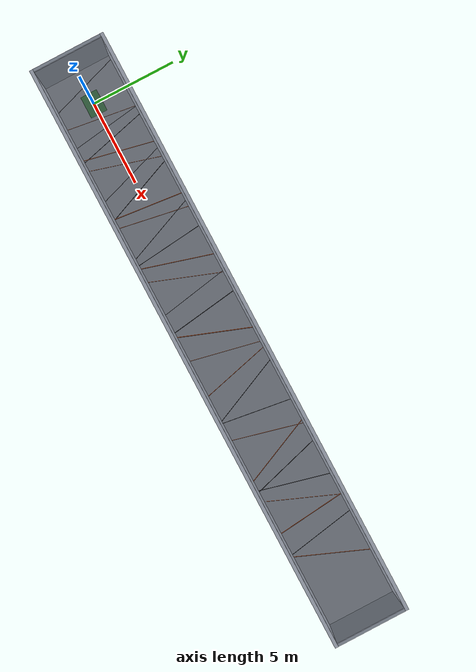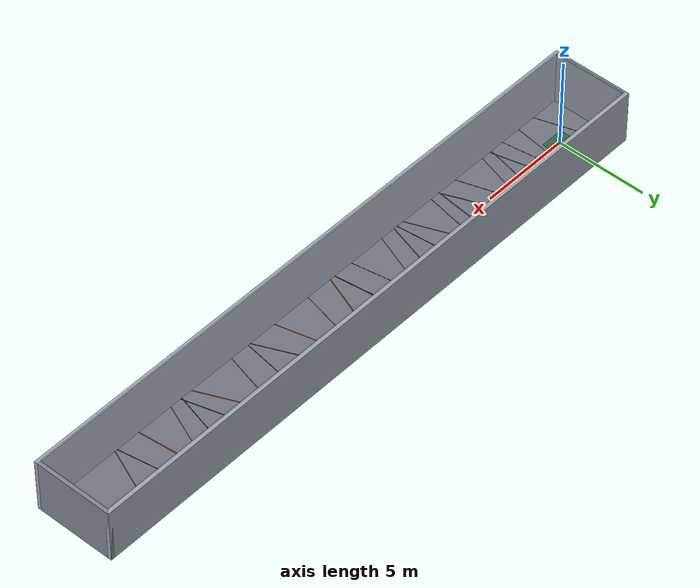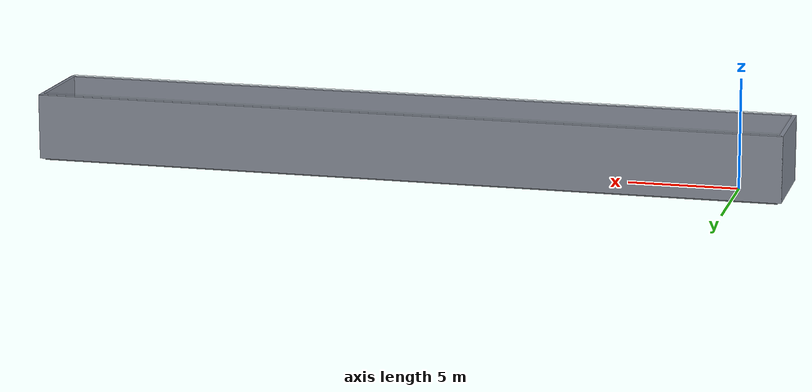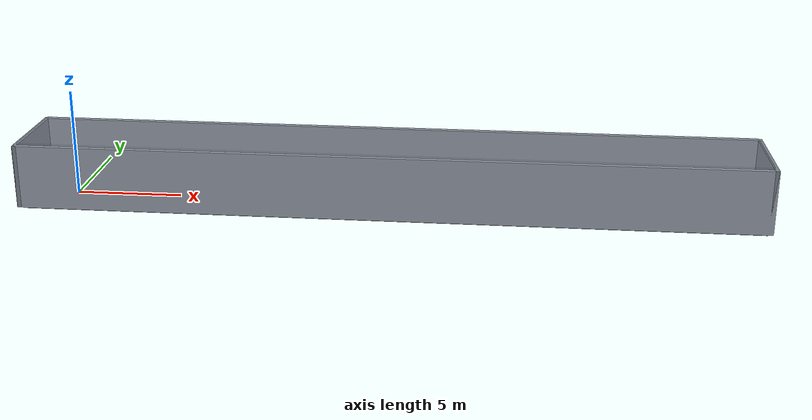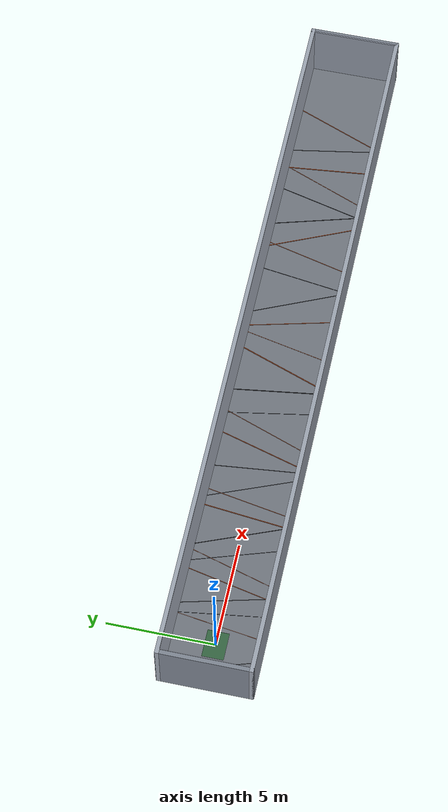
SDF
<?xml version="1.0"?>
<sdf version="1.9">
  <world name="long_hall">
    <physics name="2ms_training" type="ignored">
      <!-- Keep cable contacts stable while reducing the cost of the original
           1 ms world.  At <=0.4 m/s this is <=0.8 mm motion per step. -->
      <max_step_size>0.002</max_step_size>
      <real_time_factor>1.0</real_time_factor>
    </physics>

    <plugin filename="gz-sim-physics-system" name="gz::sim::systems::Physics"/>
    <plugin filename="gz-sim-user-commands-system" name="gz::sim::systems::UserCommands"/>
    <plugin filename="gz-sim-scene-broadcaster-system" name="gz::sim::systems::SceneBroadcaster"/>

    <gravity>0 0 -9.80665</gravity>
    <scene>
      <ambient>0.28 0.28 0.30 1</ambient>
      <background>0.08 0.09 0.12 1</background>
      <shadows>true</shadows>
    </scene>

    <!-- Interior lamps keep the closed hall evenly lit. -->
    <light name="lamp_01" type="point">
      <pose>2 0 2.7 0 0 0</pose>
      <cast_shadows>false</cast_shadows>
      <diffuse>0.95 0.92 0.84 1</diffuse>
      <specular>0.15 0.15 0.15 1</specular>
      <attenuation><range>11</range><constant>0.4</constant><linear>0.08</linear><quadratic>0.01</quadratic></attenuation>
    </light>
    <light name="lamp_02" type="point">
      <pose>10 0 2.7 0 0 0</pose>
      <cast_shadows>false</cast_shadows>
      <diffuse>0.95 0.92 0.84 1</diffuse>
      <specular>0.15 0.15 0.15 1</specular>
      <attenuation><range>11</range><constant>0.4</constant><linear>0.08</linear><quadratic>0.01</quadratic></attenuation>
    </light>
    <light name="lamp_03" type="point">
      <pose>18 0 2.7 0 0 0</pose>
      <cast_shadows>false</cast_shadows>
      <diffuse>0.95 0.92 0.84 1</diffuse>
      <specular>0.15 0.15 0.15 1</specular>
      <attenuation><range>11</range><constant>0.4</constant><linear>0.08</linear><quadratic>0.01</quadratic></attenuation>
    </light>
    <light name="lamp_04" type="point">
      <pose>26 0 2.7 0 0 0</pose>
      <cast_shadows>false</cast_shadows>
      <diffuse>0.95 0.92 0.84 1</diffuse>
      <specular>0.15 0.15 0.15 1</specular>
      <attenuation><range>11</range><constant>0.4</constant><linear>0.08</linear><quadratic>0.01</quadratic></attenuation>
    </light>

    <model name="enclosed_hall">
      <static>true</static>
      <link name="structure">
        <collision name="floor_collision">
          <pose>15 0 -0.05 0 0 0</pose>
          <geometry><box><size>34 4 0.1</size></box></geometry>
          <surface><friction><ode><mu>1.0</mu><mu2>1.0</mu2></ode></friction></surface>
        </collision>
        <visual name="floor_visual">
          <pose>15 0 -0.05 0 0 0</pose>
          <geometry><box><size>34 4 0.1</size></box></geometry>
          <material>
            <ambient>0.32 0.34 0.37 1</ambient>
            <diffuse>0.42 0.44 0.47 1</diffuse>
            <specular>0.08 0.08 0.08 1</specular>
          </material>
        </visual>

        <collision name="left_wall_collision">
          <pose>15 2.1 1.5 0 0 0</pose>
          <geometry><box><size>34.4 0.2 3.0</size></box></geometry>
        </collision>
        <visual name="left_wall_visual">
          <pose>15 2.1 1.5 0 0 0</pose>
          <geometry><box><size>34.4 0.2 3.0</size></box></geometry>
          <material><ambient>0.52 0.55 0.60 1</ambient><diffuse>0.62 0.65 0.70 1</diffuse></material>
        </visual>

        <collision name="right_wall_collision">
          <pose>15 -2.1 1.5 0 0 0</pose>
          <geometry><box><size>34.4 0.2 3.0</size></box></geometry>
        </collision>
        <visual name="right_wall_visual">
          <pose>15 -2.1 1.5 0 0 0</pose>
          <geometry><box><size>34.4 0.2 3.0</size></box></geometry>
          <material><ambient>0.52 0.55 0.60 1</ambient><diffuse>0.62 0.65 0.70 1</diffuse></material>
        </visual>

        <collision name="rear_wall_collision">
          <pose>-2.1 0 1.5 0 0 0</pose>
          <geometry><box><size>0.2 4.4 3.0</size></box></geometry>
        </collision>
        <visual name="rear_wall_visual">
          <pose>-2.1 0 1.5 0 0 0</pose>
          <geometry><box><size>0.2 4.4 3.0</size></box></geometry>
          <material><ambient>0.40 0.43 0.48 1</ambient><diffuse>0.50 0.53 0.58 1</diffuse></material>
        </visual>

        <collision name="front_wall_collision">
          <pose>32.1 0 1.5 0 0 0</pose>
          <geometry><box><size>0.2 4.4 3.0</size></box></geometry>
        </collision>
        <visual name="front_wall_visual">
          <pose>32.1 0 1.5 0 0 0</pose>
          <geometry><box><size>0.2 4.4 3.0</size></box></geometry>
          <material><ambient>0.40 0.43 0.48 1</ambient><diffuse>0.50 0.53 0.58 1</diffuse></material>
        </visual>

        <collision name="ceiling_collision">
          <pose>15 0 3.05 0 0 0</pose>
          <geometry><box><size>34 4 0.1</size></box></geometry>
        </collision>
        <visual name="ceiling_visual">
          <pose>15 0 3.05 0 0 0</pose>
          <geometry><box><size>34 4 0.1</size></box></geometry>
          <transparency>0.70</transparency>
          <cast_shadows>false</cast_shadows>
          <material><ambient>0.45 0.47 0.52 1</ambient><diffuse>0.55 0.57 0.62 1</diffuse></material>
        </visual>
      </link>
    </model>

    <model name="cable_bumps">
      <static>true</static>
      <link name="cables">
        <collision name="cable_01_collision">
          <pose>1.5 0 0.008 1.57079632679 0 0.139626340</pose>
          <geometry><cylinder><radius>0.008</radius><length>4.039310</length></cylinder></geometry>
          <surface><friction><ode><mu>0.9</mu><mu2>0.9</mu2></ode></friction></surface>
        </collision>
        <visual name="cable_01_visual">
          <pose>1.5 0 0.008 1.57079632679 0 0.139626340</pose>
          <geometry><cylinder><radius>0.008</radius><length>4.039310</length></cylinder></geometry>
          <material><ambient>0.04 0.04 0.04 1</ambient><diffuse>0.08 0.08 0.08 1</diffuse></material>
        </visual>

        <collision name="cable_02_collision">
          <pose>3.0 0 0.014 1.57079632679 0 -0.209439510</pose>
          <geometry><cylinder><radius>0.014</radius><length>4.089362</length></cylinder></geometry>
          <surface><friction><ode><mu>0.9</mu><mu2>0.9</mu2></ode></friction></surface>
        </collision>
        <visual name="cable_02_visual">
          <pose>3.0 0 0.014 1.57079632679 0 -0.209439510</pose>
          <geometry><cylinder><radius>0.014</radius><length>4.089362</length></cylinder></geometry>
          <material><ambient>0.42 0.15 0.02 1</ambient><diffuse>0.92 0.32 0.04 1</diffuse></material>
        </visual>

        <collision name="cable_03_collision">
          <pose>4.5 0 0.010 1.57079632679 0 0.314159265</pose>
          <geometry><cylinder><radius>0.010</radius><length>4.205849</length></cylinder></geometry>
          <surface><friction><ode><mu>0.9</mu><mu2>0.9</mu2></ode></friction></surface>
        </collision>
        <visual name="cable_03_visual">
          <pose>4.5 0 0.010 1.57079632679 0 0.314159265</pose>
          <geometry><cylinder><radius>0.010</radius><length>4.205849</length></cylinder></geometry>
          <material><ambient>0.04 0.04 0.04 1</ambient><diffuse>0.08 0.08 0.08 1</diffuse></material>
        </visual>

        <collision name="cable_04_collision">
          <pose>6.5 0 0.020 1.57079632679 0 -0.104719755</pose>
          <geometry><cylinder><radius>0.020</radius><length>4.022033</length></cylinder></geometry>
          <surface><friction><ode><mu>0.9</mu><mu2>0.9</mu2></ode></friction></surface>
        </collision>
        <visual name="cable_04_visual">
          <pose>6.5 0 0.020 1.57079632679 0 -0.104719755</pose>
          <geometry><cylinder><radius>0.020</radius><length>4.022033</length></cylinder></geometry>
          <material><ambient>0.42 0.15 0.02 1</ambient><diffuse>0.92 0.32 0.04 1</diffuse></material>
        </visual>

        <collision name="cable_05_collision">
          <pose>8.0 0 0.012 1.57079632679 0 0.383972435</pose>
          <geometry><cylinder><radius>0.012</radius><length>4.314139</length></cylinder></geometry>
          <surface><friction><ode><mu>0.9</mu><mu2>0.9</mu2></ode></friction></surface>
        </collision>
        <visual name="cable_05_visual">
          <pose>8.0 0 0.012 1.57079632679 0 0.383972435</pose>
          <geometry><cylinder><radius>0.012</radius><length>4.314139</length></cylinder></geometry>
          <material><ambient>0.04 0.04 0.04 1</ambient><diffuse>0.08 0.08 0.08 1</diffuse></material>
        </visual>

        <collision name="cable_06_collision">
          <pose>10.0 0 0.018 1.57079632679 0 -0.279252680</pose>
          <geometry><cylinder><radius>0.018</radius><length>4.161198</length></cylinder></geometry>
          <surface><friction><ode><mu>0.9</mu><mu2>0.9</mu2></ode></friction></surface>
        </collision>
        <visual name="cable_06_visual">
          <pose>10.0 0 0.018 1.57079632679 0 -0.279252680</pose>
          <geometry><cylinder><radius>0.018</radius><length>4.161198</length></cylinder></geometry>
          <material><ambient>0.42 0.15 0.02 1</ambient><diffuse>0.92 0.32 0.04 1</diffuse></material>
        </visual>

        <collision name="cable_07_collision">
          <pose>12.0 0 0.009 1.57079632679 0 0.174532925</pose>
          <geometry><cylinder><radius>0.009</radius><length>4.061706</length></cylinder></geometry>
          <surface><friction><ode><mu>0.9</mu><mu2>0.9</mu2></ode></friction></surface>
        </collision>
        <visual name="cable_07_visual">
          <pose>12.0 0 0.009 1.57079632679 0 0.174532925</pose>
          <geometry><cylinder><radius>0.009</radius><length>4.061706</length></cylinder></geometry>
          <material><ambient>0.04 0.04 0.04 1</ambient><diffuse>0.08 0.08 0.08 1</diffuse></material>
        </visual>

        <collision name="cable_08_collision">
          <pose>14.5 0 0.022 1.57079632679 0 -0.349065850</pose>
          <geometry><cylinder><radius>0.022</radius><length>4.256711</length></cylinder></geometry>
          <surface><friction><ode><mu>0.9</mu><mu2>0.9</mu2></ode></friction></surface>
        </collision>
        <visual name="cable_08_visual">
          <pose>14.5 0 0.022 1.57079632679 0 -0.349065850</pose>
          <geometry><cylinder><radius>0.022</radius><length>4.256711</length></cylinder></geometry>
          <material><ambient>0.42 0.15 0.02 1</ambient><diffuse>0.92 0.32 0.04 1</diffuse></material>
        </visual>

        <collision name="cable_09_collision">
          <pose>17.0 0 0.015 1.57079632679 0 0.244346095</pose>
          <geometry><cylinder><radius>0.015</radius><length>4.122455</length></cylinder></geometry>
          <surface><friction><ode><mu>0.9</mu><mu2>0.9</mu2></ode></friction></surface>
        </collision>
        <visual name="cable_09_visual">
          <pose>17.0 0 0.015 1.57079632679 0 0.244346095</pose>
          <geometry><cylinder><radius>0.015</radius><length>4.122455</length></cylinder></geometry>
          <material><ambient>0.42 0.15 0.02 1</ambient><diffuse>0.92 0.32 0.04 1</diffuse></material>
        </visual>

        <collision name="cable_10_collision">
          <pose>19.5 0 0.011 1.57079632679 0 -0.139626340</pose>
          <geometry><cylinder><radius>0.011</radius><length>4.039310</length></cylinder></geometry>
          <surface><friction><ode><mu>0.9</mu><mu2>0.9</mu2></ode></friction></surface>
        </collision>
        <visual name="cable_10_visual">
          <pose>19.5 0 0.011 1.57079632679 0 -0.139626340</pose>
          <geometry><cylinder><radius>0.011</radius><length>4.039310</length></cylinder></geometry>
          <material><ambient>0.04 0.04 0.04 1</ambient><diffuse>0.08 0.08 0.08 1</diffuse></material>
        </visual>

        <collision name="cable_11_collision">
          <pose>22.0 0 0.019 1.57079632679 0 0.418879020</pose>
          <geometry><cylinder><radius>0.019</radius><length>4.378545</length></cylinder></geometry>
          <surface><friction><ode><mu>0.9</mu><mu2>0.9</mu2></ode></friction></surface>
        </collision>
        <visual name="cable_11_visual">
          <pose>22.0 0 0.019 1.57079632679 0 0.418879020</pose>
          <geometry><cylinder><radius>0.019</radius><length>4.378545</length></cylinder></geometry>
          <material><ambient>0.42 0.15 0.02 1</ambient><diffuse>0.92 0.32 0.04 1</diffuse></material>
        </visual>

        <collision name="cable_12_collision">
          <pose>24.0 0 0.013 1.57079632679 0 -0.244346095</pose>
          <geometry><cylinder><radius>0.013</radius><length>4.122455</length></cylinder></geometry>
          <surface><friction><ode><mu>0.9</mu><mu2>0.9</mu2></ode></friction></surface>
        </collision>
        <visual name="cable_12_visual">
          <pose>24.0 0 0.013 1.57079632679 0 -0.244346095</pose>
          <geometry><cylinder><radius>0.013</radius><length>4.122455</length></cylinder></geometry>
          <material><ambient>0.04 0.04 0.04 1</ambient><diffuse>0.08 0.08 0.08 1</diffuse></material>
        </visual>

        <collision name="cable_13_collision">
          <pose>26.0 0 0.021 1.57079632679 0 0.104719755</pose>
          <geometry><cylinder><radius>0.021</radius><length>4.022033</length></cylinder></geometry>
          <surface><friction><ode><mu>0.9</mu><mu2>0.9</mu2></ode></friction></surface>
        </collision>
        <visual name="cable_13_visual">
          <pose>26.0 0 0.021 1.57079632679 0 0.104719755</pose>
          <geometry><cylinder><radius>0.021</radius><length>4.022033</length></cylinder></geometry>
          <material><ambient>0.42 0.15 0.02 1</ambient><diffuse>0.92 0.32 0.04 1</diffuse></material>
        </visual>

        <collision name="cable_14_collision">
          <pose>28.5 0 0.016 1.57079632679 0 -0.383972435</pose>
          <geometry><cylinder><radius>0.016</radius><length>4.314139</length></cylinder></geometry>
          <surface><friction><ode><mu>0.9</mu><mu2>0.9</mu2></ode></friction></surface>
        </collision>
        <visual name="cable_14_visual">
          <pose>28.5 0 0.016 1.57079632679 0 -0.383972435</pose>
          <geometry><cylinder><radius>0.016</radius><length>4.314139</length></cylinder></geometry>
          <material><ambient>0.42 0.15 0.02 1</ambient><diffuse>0.92 0.32 0.04 1</diffuse></material>
        </visual>

        <collision name="cable_15_collision">
          <pose>-1.10 0 0.010 1.57079632679 0 0.314159265</pose>
          <geometry><cylinder><radius>0.010</radius><length>4.205849</length></cylinder></geometry>
          <surface><friction><ode><mu>0.9</mu><mu2>0.9</mu2></ode></friction></surface>
        </collision>
        <visual name="cable_15_visual">
          <pose>-1.10 0 0.010 1.57079632679 0 0.314159265</pose>
          <geometry><cylinder><radius>0.010</radius><length>4.205849</length></cylinder></geometry>
          <material><ambient>0.04 0.04 0.04 1</ambient><diffuse>0.08 0.08 0.08 1</diffuse></material>
        </visual>

        <collision name="cable_16_collision">
          <pose>0.90 0 0.008 1.57079632679 0 -0.139626340</pose>
          <geometry><cylinder><radius>0.008</radius><length>4.039310</length></cylinder></geometry>
          <surface><friction><ode><mu>0.9</mu><mu2>0.9</mu2></ode></friction></surface>
        </collision>
        <visual name="cable_16_visual">
          <pose>0.90 0 0.008 1.57079632679 0 -0.139626340</pose>
          <geometry><cylinder><radius>0.008</radius><length>4.039310</length></cylinder></geometry>
          <material><ambient>0.42 0.15 0.02 1</ambient><diffuse>0.92 0.32 0.04 1</diffuse></material>
        </visual>

        <collision name="cable_17_collision">
          <pose>2.20 0 0.012 1.57079632679 0 0.244346095</pose>
          <geometry><cylinder><radius>0.012</radius><length>4.122455</length></cylinder></geometry>
          <surface><friction><ode><mu>0.9</mu><mu2>0.9</mu2></ode></friction></surface>
        </collision>
        <visual name="cable_17_visual">
          <pose>2.20 0 0.012 1.57079632679 0 0.244346095</pose>
          <geometry><cylinder><radius>0.012</radius><length>4.122455</length></cylinder></geometry>
          <material><ambient>0.04 0.04 0.04 1</ambient><diffuse>0.08 0.08 0.08 1</diffuse></material>
        </visual>

        <collision name="cable_18_collision">
          <pose>3.80 0 0.009 1.57079632679 0 -0.279252680</pose>
          <geometry><cylinder><radius>0.009</radius><length>4.161198</length></cylinder></geometry>
          <surface><friction><ode><mu>0.9</mu><mu2>0.9</mu2></ode></friction></surface>
        </collision>
        <visual name="cable_18_visual">
          <pose>3.80 0 0.009 1.57079632679 0 -0.279252680</pose>
          <geometry><cylinder><radius>0.009</radius><length>4.161198</length></cylinder></geometry>
          <material><ambient>0.42 0.15 0.02 1</ambient><diffuse>0.92 0.32 0.04 1</diffuse></material>
        </visual>

        <collision name="cable_19_collision">
          <pose>5.50 0 0.015 1.57079632679 0 0.383972435</pose>
          <geometry><cylinder><radius>0.015</radius><length>4.314139</length></cylinder></geometry>
          <surface><friction><ode><mu>0.9</mu><mu2>0.9</mu2></ode></friction></surface>
        </collision>
        <visual name="cable_19_visual">
          <pose>5.50 0 0.015 1.57079632679 0 0.383972435</pose>
          <geometry><cylinder><radius>0.015</radius><length>4.314139</length></cylinder></geometry>
          <material><ambient>0.04 0.04 0.04 1</ambient><diffuse>0.08 0.08 0.08 1</diffuse></material>
        </visual>

        <collision name="cable_20_collision">
          <pose>7.20 0 0.011 1.57079632679 0 -0.174532925</pose>
          <geometry><cylinder><radius>0.011</radius><length>4.061706</length></cylinder></geometry>
          <surface><friction><ode><mu>0.9</mu><mu2>0.9</mu2></ode></friction></surface>
        </collision>
        <visual name="cable_20_visual">
          <pose>7.20 0 0.011 1.57079632679 0 -0.174532925</pose>
          <geometry><cylinder><radius>0.011</radius><length>4.061706</length></cylinder></geometry>
          <material><ambient>0.42 0.15 0.02 1</ambient><diffuse>0.92 0.32 0.04 1</diffuse></material>
        </visual>

        <collision name="cable_21_collision">
          <pose>9.00 0 0.013 1.57079632679 0 0.104719755</pose>
          <geometry><cylinder><radius>0.013</radius><length>4.022033</length></cylinder></geometry>
          <surface><friction><ode><mu>0.9</mu><mu2>0.9</mu2></ode></friction></surface>
        </collision>
        <visual name="cable_21_visual">
          <pose>9.00 0 0.013 1.57079632679 0 0.104719755</pose>
          <geometry><cylinder><radius>0.013</radius><length>4.022033</length></cylinder></geometry>
          <material><ambient>0.04 0.04 0.04 1</ambient><diffuse>0.08 0.08 0.08 1</diffuse></material>
        </visual>

        <collision name="cable_22_collision">
          <pose>11.00 0 0.010 1.57079632679 0 -0.349065850</pose>
          <geometry><cylinder><radius>0.010</radius><length>4.256711</length></cylinder></geometry>
          <surface><friction><ode><mu>0.9</mu><mu2>0.9</mu2></ode></friction></surface>
        </collision>
        <visual name="cable_22_visual">
          <pose>11.00 0 0.010 1.57079632679 0 -0.349065850</pose>
          <geometry><cylinder><radius>0.010</radius><length>4.256711</length></cylinder></geometry>
          <material><ambient>0.42 0.15 0.02 1</ambient><diffuse>0.92 0.32 0.04 1</diffuse></material>
        </visual>

        <collision name="cable_23_collision">
          <pose>13.20 0 0.018 1.57079632679 0 0.139626340</pose>
          <geometry><cylinder><radius>0.018</radius><length>4.039310</length></cylinder></geometry>
          <surface><friction><ode><mu>0.9</mu><mu2>0.9</mu2></ode></friction></surface>
        </collision>
        <visual name="cable_23_visual">
          <pose>13.20 0 0.018 1.57079632679 0 0.139626340</pose>
          <geometry><cylinder><radius>0.018</radius><length>4.039310</length></cylinder></geometry>
          <material><ambient>0.04 0.04 0.04 1</ambient><diffuse>0.08 0.08 0.08 1</diffuse></material>
        </visual>

        <collision name="cable_24_collision">
          <pose>15.70 0 0.009 1.57079632679 0 -0.209439510</pose>
          <geometry><cylinder><radius>0.009</radius><length>4.089362</length></cylinder></geometry>
          <surface><friction><ode><mu>0.9</mu><mu2>0.9</mu2></ode></friction></surface>
        </collision>
        <visual name="cable_24_visual">
          <pose>15.70 0 0.009 1.57079632679 0 -0.209439510</pose>
          <geometry><cylinder><radius>0.009</radius><length>4.089362</length></cylinder></geometry>
          <material><ambient>0.42 0.15 0.02 1</ambient><diffuse>0.92 0.32 0.04 1</diffuse></material>
        </visual>

        <collision name="cable_25_collision">
          <pose>18.20 0 0.014 1.57079632679 0 0.418879020</pose>
          <geometry><cylinder><radius>0.014</radius><length>4.378545</length></cylinder></geometry>
          <surface><friction><ode><mu>0.9</mu><mu2>0.9</mu2></ode></friction></surface>
        </collision>
        <visual name="cable_25_visual">
          <pose>18.20 0 0.014 1.57079632679 0 0.418879020</pose>
          <geometry><cylinder><radius>0.014</radius><length>4.378545</length></cylinder></geometry>
          <material><ambient>0.04 0.04 0.04 1</ambient><diffuse>0.08 0.08 0.08 1</diffuse></material>
        </visual>

        <collision name="cable_26_collision">
          <pose>20.80 0 0.012 1.57079632679 0 -0.244346095</pose>
          <geometry><cylinder><radius>0.012</radius><length>4.122455</length></cylinder></geometry>
          <surface><friction><ode><mu>0.9</mu><mu2>0.9</mu2></ode></friction></surface>
        </collision>
        <visual name="cable_26_visual">
          <pose>20.80 0 0.012 1.57079632679 0 -0.244346095</pose>
          <geometry><cylinder><radius>0.012</radius><length>4.122455</length></cylinder></geometry>
          <material><ambient>0.42 0.15 0.02 1</ambient><diffuse>0.92 0.32 0.04 1</diffuse></material>
        </visual>

        <collision name="cable_27_collision">
          <pose>23.00 0 0.016 1.57079632679 0 0.279252680</pose>
          <geometry><cylinder><radius>0.016</radius><length>4.161198</length></cylinder></geometry>
          <surface><friction><ode><mu>0.9</mu><mu2>0.9</mu2></ode></friction></surface>
        </collision>
        <visual name="cable_27_visual">
          <pose>23.00 0 0.016 1.57079632679 0 0.279252680</pose>
          <geometry><cylinder><radius>0.016</radius><length>4.161198</length></cylinder></geometry>
          <material><ambient>0.04 0.04 0.04 1</ambient><diffuse>0.08 0.08 0.08 1</diffuse></material>
        </visual>

        <collision name="cable_28_collision">
          <pose>25.00 0 0.010 1.57079632679 0 -0.383972435</pose>
          <geometry><cylinder><radius>0.010</radius><length>4.314139</length></cylinder></geometry>
          <surface><friction><ode><mu>0.9</mu><mu2>0.9</mu2></ode></friction></surface>
        </collision>
        <visual name="cable_28_visual">
          <pose>25.00 0 0.010 1.57079632679 0 -0.383972435</pose>
          <geometry><cylinder><radius>0.010</radius><length>4.314139</length></cylinder></geometry>
          <material><ambient>0.42 0.15 0.02 1</ambient><diffuse>0.92 0.32 0.04 1</diffuse></material>
        </visual>

        <collision name="cable_29_collision">
          <pose>27.20 0 0.013 1.57079632679 0 0.174532925</pose>
          <geometry><cylinder><radius>0.013</radius><length>4.061706</length></cylinder></geometry>
          <surface><friction><ode><mu>0.9</mu><mu2>0.9</mu2></ode></friction></surface>
        </collision>
        <visual name="cable_29_visual">
          <pose>27.20 0 0.013 1.57079632679 0 0.174532925</pose>
          <geometry><cylinder><radius>0.013</radius><length>4.061706</length></cylinder></geometry>
          <material><ambient>0.04 0.04 0.04 1</ambient><diffuse>0.08 0.08 0.08 1</diffuse></material>
        </visual>
      </link>
    </model>

    <!-- Visual-only marker for the cable-free reset area around world origin. -->
    <model name="spawn_clear_zone">
      <static>true</static>
      <link name="marker">
        <visual name="spawn_pad_visual">
          <pose>0 0 0.001 0 0 0</pose>
          <geometry><box><size>1.30 1.00 0.002</size></box></geometry>
          <material>
            <ambient>0.04 0.20 0.08 1</ambient>
            <diffuse>0.08 0.34 0.12 1</diffuse>
          </material>
        </visual>
      </link>
    </model>
  </world>
</sdf>
